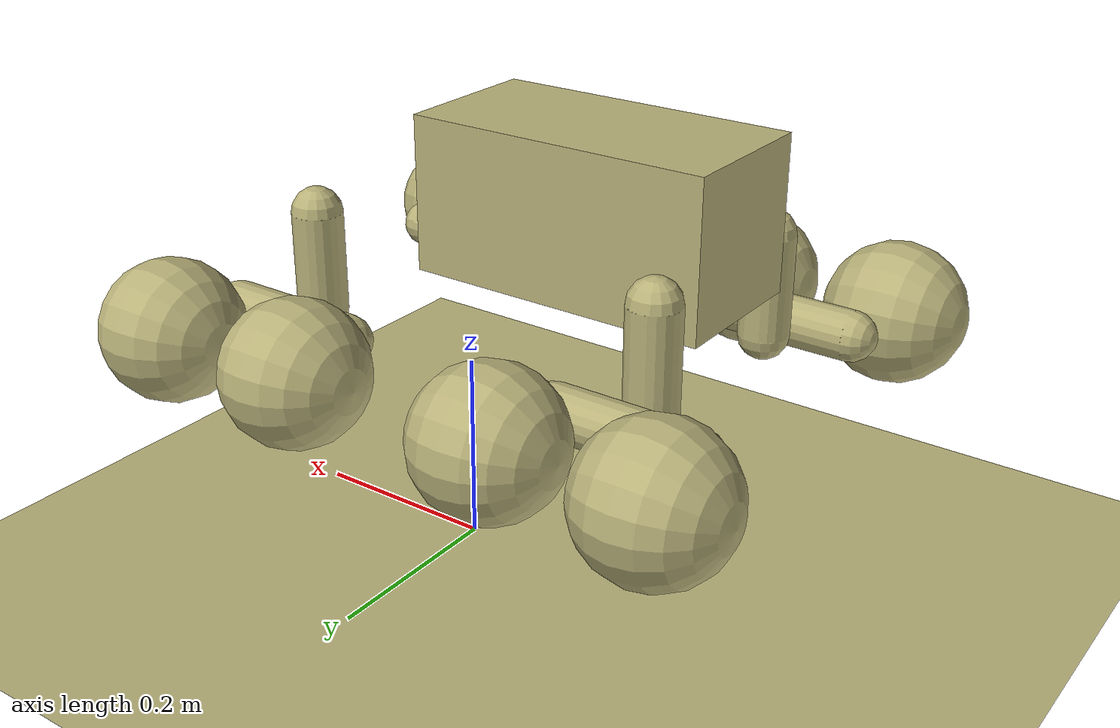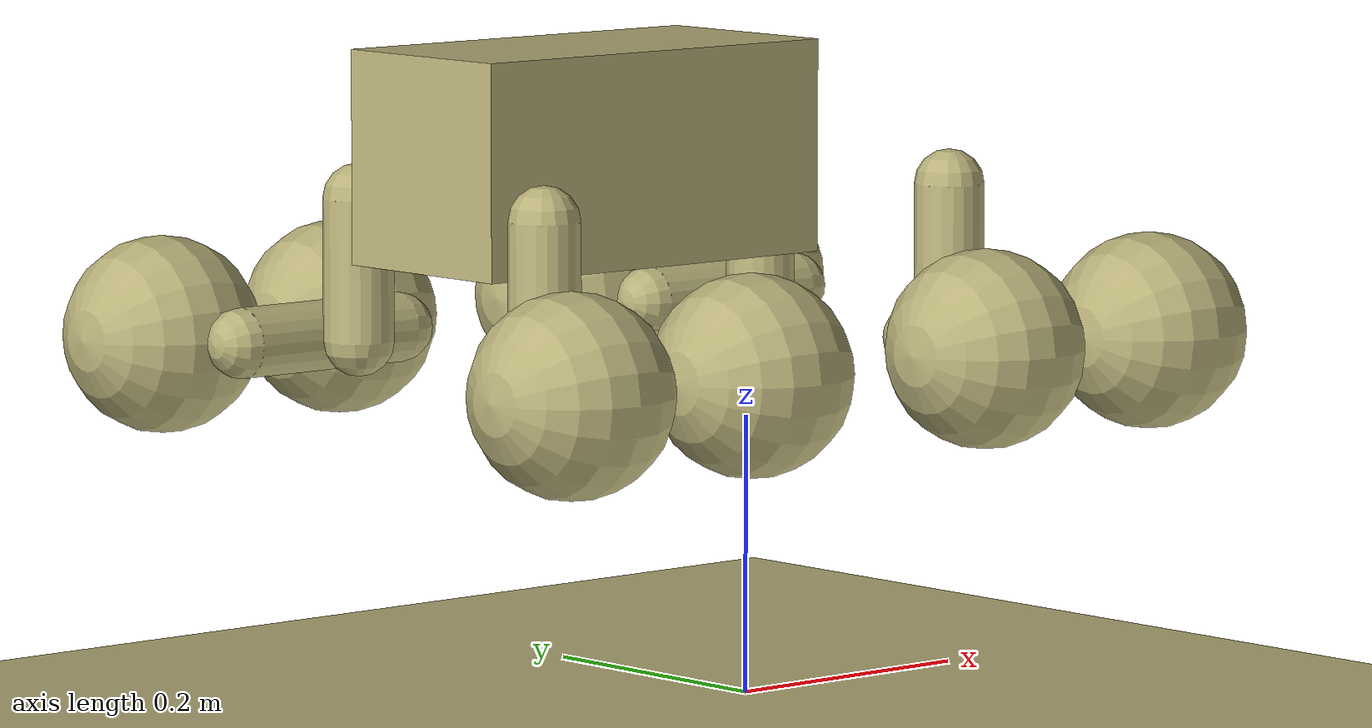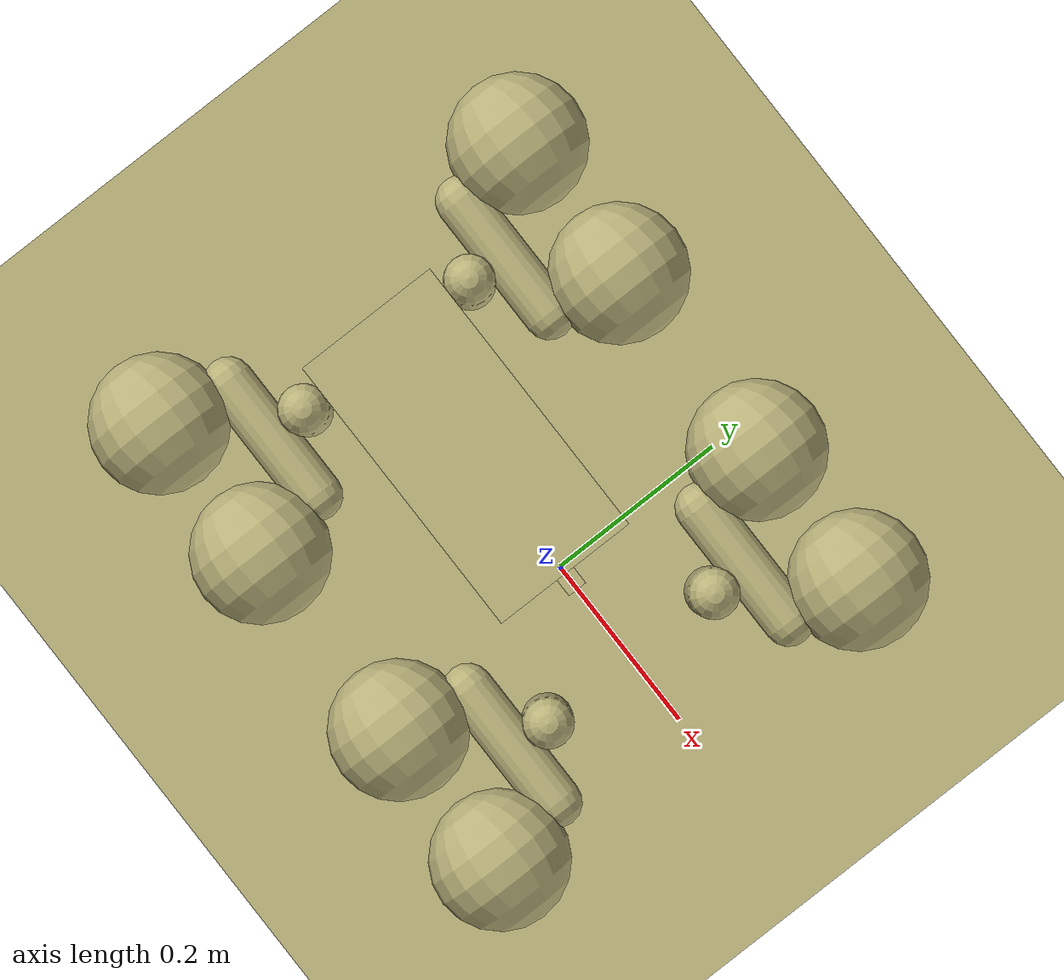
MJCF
<mujoco model="SMALTER Scene">

    <include file="WALTER_training.xml"/>

    <statistic center="0 0 0.1" extent="0.8"/>

    <visual>
      <headlight diffuse="0.6 0.6 0.6" ambient="0.3 0.3 0.3" specular="0 0 0"/>
      <rgba haze="0.15 0.25 0.35 1"/>
      <global azimuth="120" elevation="-20"/>
    </visual>

    <asset>
      <texture type="skybox" builtin="gradient" rgb1="0.3 0.5 0.7" rgb2="0 0 0" width="512" height="3072"/>
      <texture type="2d" name="groundplane" builtin="checker" mark="edge" rgb1="0.2 0.3 0.4" rgb2="0.1 0.2 0.3"
        markrgb="0.8 0.8 0.8" width="300" height="300"/>
      <material name="groundplane" texture="groundplane" texuniform="true" texrepeat="5 5" reflectance="0.2"/>
    </asset>

    <worldbody>
      <light pos="0 0 5" dir="0 0 -1" directional="true"/>
      <geom name="floor" size="0 0 0.05" type="plane" material="groundplane" friction="1 0.005 0.0001"/>
    </worldbody>

  </mujoco>

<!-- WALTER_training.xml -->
<mujoco model="walter">

    <!--Defining the assets for the model-->
  <asset>
    <texture type="skybox" builtin="gradient" rgb1="1 1 1" rgb2=".63 .8 1" width="256" height="256"/>
    <mesh name = "thigh_mesh" file = "assets/Thigh.stl"/>
    <mesh name = "shin_mesh" file = "assets/Shin.stl"/>
    <mesh name = "wheel_mesh" file = "assets/Wheel.stl"/>
    <mesh name = "body_mesh" file = "assets/Body.stl"/>
    <mesh name = "head_mesh" file = "assets/Head.stl"/>
  </asset>

  <!--Defining default classes for components-->
  <default>
    <geom rgba="0.73 0.7 0.48 1"/>
    <joint armature="0.019764" damping="8"/>
    <!-- Default thigh class -->
    <default class="thigh">
        <geom type="capsule" size = "0.025 0.05" zaxis="0 1 0" pos = "0 -0.05 0.025"/>
    </default>

    <!-- Default shin class -->
    <default class="shin">
        <geom type="capsule" size = "0.025 0.07" zaxis = "1 0 0" pos = "0 0 0.025"/>
    </default>

    <!-- Default wheel class -->
    <default class="wheel">
        <geom type="sphere" size = "0.07" zaxis="1 0 0" pos = "0 0 0.015"/>
    </default>

    <!-- Head class -->
    <default class="head">
        <geom type="box" size = "0.01 0.01 0.01" pos = "0 0 0.0" mass = "5"/>
    </default>

        <!-- Body class -->
    <default class="body">
        <geom type="box" size = "0.15 0.075 0.075" pos = "-0.15 0.0 0.0" mass = "10"/>
    </default>

    <!-- Default actuator class-->
    <default class="knee_actuator">
        <position kp="40"/>
    </default>

    <default class="hip_actuator">
        <position kp="40"/>
    </default>

    <default class="wheel_actuator">
        <position kp="40"/>
    </default>

  </default>

  <!-- WALTER MODEL -->
    <worldbody>
        <light diffuse=".5 .5 .5" pos="0 0 3" dir="0 0 -1"/>
        <!-- Rear Body Section -->
        <body name="body" pos="0 0 0.4">
            <joint type="free"/>
            <geom class = "body"/>
            <!-- Add rear legs here -->

            <!-- Back left thigh -->
             <body name = "bl_thigh" pos = "-0.274 0.075 -0.0325" quat = "0 0 1 1">
                <inertial pos = "0 -0.05 0.03" mass = "0.20157" diaginertia="0.0005212 0.000114 0.0005585"/>
                <joint name="bl_hip" type="hinge" axis = "0 0 1" />
                <geom class="thigh" />
                <!-- Back left shin -->
                <body name = "bl_shin" pos = "0 -0.1 0.043" >
                    <joint name="bl_knee" type="hinge" axis = "0 0 1"/>
                    <geom class="shin"/>
                    <!-- Back left wheels -->
                     <body name = "bl_wheel1" pos = "0.08 0 0.088">
                        <geom class="wheel"/>
                        <joint name="bl_wheel1_joint" type="hinge" axis="0 0 1"/>
                     </body>
                     <body name = "bl_wheel2" pos = "-0.08 0 0.088">
                        <geom class="wheel"/>
                        <joint name="bl_wheel2_joint" type="hinge" axis="0 0 1"/>
                     </body>
                </body>
             </body>

            <!-- Back right thigh -->
            <body name = "br_thigh" pos = "-0.274 -0.075 -0.0325" quat = "1 1 0 0">
                <inertial pos = "0 -0.05 0.03" mass = "0.20157" diaginertia="0.0005212 0.000114 0.0005585"/>
                <joint name="br_hip" type="hinge" axis = "0 0 1" />
                <geom class="thigh"/>
                <!-- Back right shin -->
                <body name = "br_shin" pos = "0 -0.1 0.043" >
                    <joint name="br_knee" type="hinge" axis = "0 0 1"/>
                    <geom class="shin"/>
                    <!-- Back right wheels -->
                     <body name = "br_wheel1" pos = "0.08 0 0.088">
                        <geom class="wheel"/>
                        <joint name="br_wheel1_joint" type="hinge" axis="0 0 1"/>
                     </body>
                     <body name = "br_wheel2" pos = "-0.08 0 0.088">
                        <geom class="wheel"/>
                        <joint name="br_wheel2_joint" type="hinge" axis="0 0 1"/>
                     </body>
                </body>
             </body>

            <!-- Front Body Section -->
            <body name="head" pos="0.01 0 0">
                <joint name="body_joint" type="hinge" axis = "1 0 0" stiffness = "0.05" range = "-0.5 0.5"/>
                <geom class = "head"/>

                <!-- Add front legs here -->
                 <!-- Front left thigh -->
                 <body name = "fl_thigh" pos = "0.094 0.075 -0.0325" quat = "0 0 1 1">
                    <inertial pos = "0 -0.05 0.03" mass = "0.20157" diaginertia="0.0005212 0.000114 0.0005585"/>
                    <joint name="fl_hip" type="hinge" axis = "0 0 1" />
                    <geom class="thigh"/>
                    <!-- Back left shin -->
                    <body name = "fl_shin" pos = "0 -0.1 0.043" >
                        <joint name="fl_knee" type="hinge" axis = "0 0 1"/>
                        <geom class="shin"/>
                        <!-- Back left wheels -->
                         <body name = "fl_wheel1" pos = "0.08 0 0.088">
                            <geom class="wheel"/>
                            <joint name="fl_wheel1_joint" type="hinge" axis="0 0 1"/>
                         </body>
                         <body name = "fl_wheel2" pos = "-0.08 0 0.088">
                            <geom class="wheel"/>
                            <joint name="fl_wheel2_joint" type="hinge" axis="0 0 1"/>
                         </body>
                    </body>
                 </body>

                <!-- Front right thigh -->
                <body name = "fr_thigh" pos = "0.094 -0.075 -0.0325" quat = "1 1 0 0">
                    <inertial pos = "0 -0.05 0.03" mass = "0.20157" diaginertia="0.0005212 0.000114 0.0005585"/>
                    <joint name="fr_hip" type="hinge" axis = "0 0 1" />
                    <geom class="thigh"/>
                    <!-- Back left shin -->
                    <body name = "fr_shin" pos = "0 -0.1 0.043" >
                        <joint name="fr_knee" type="hinge" axis = "0 0 1"/>
                        <geom class="shin"/>
                        <!-- Back left wheels -->
                            <body name = "fr_wheel1" pos = "0.08 0 0.088">
                                <geom class="wheel"/>
                                <joint name="fr_wheel1_joint" type="hinge" axis="0 0 1"/>
                            </body>
                            <body name = "fr_wheel2" pos = "-0.08 0 0.088">
                                <geom class="wheel"/>
                                <joint name="fr_wheel2_joint" type="hinge" axis="0 0 1"/>
                            </body>
                    </body>
                </body>
            </body>
            </body>
        </worldbody>
    <!-- Defining the actuators -->
    <actuator>
        <position joint="fr_hip" class = "hip_actuator"/>
        <position joint="fr_knee" class = "knee_actuator"/>
        <position joint="fr_wheel1_joint" class = "wheel_actuator"/>
        <position joint="fr_wheel2_joint" class = "wheel_actuator"/>
        <position joint="fl_hip" class = "hip_actuator"/>
        <position joint="fl_knee" class = "knee_actuator"/>
        <position joint="fl_wheel1_joint" class = "wheel_actuator"/>
        <position joint="fl_wheel2_joint" class = "wheel_actuator"/>
        <position joint="br_hip" class = "hip_actuator"/>
        <position joint="br_knee" class = "knee_actuator"/>
        <position joint="br_wheel1_joint" class = "wheel_actuator"/>
        <position joint="br_wheel2_joint" class = "wheel_actuator"/>
        <position joint="bl_hip" class = "hip_actuator"/>
        <position joint="bl_knee" class = "knee_actuator"/>
        <position joint="bl_wheel1_joint" class = "wheel_actuator"/>
        <position joint="bl_wheel2_joint" class = "wheel_actuator"/>
    </actuator>
    <keyframe>
    <key name="home"
        qpos="0 0 0.28
            1 0 0 0
            0.0 0.5 1.0
            0.0 0.5 1.0
            0.0 0.5 1.0
            0.0 0.5 1.0
            0.0 0.5 1.0
            0.0 0.5"
        ctrl="0 0 0 0
             0 0 0 0
             0 0 0 0
             0 0 0 0"/>
    </keyframe>
</mujoco>
